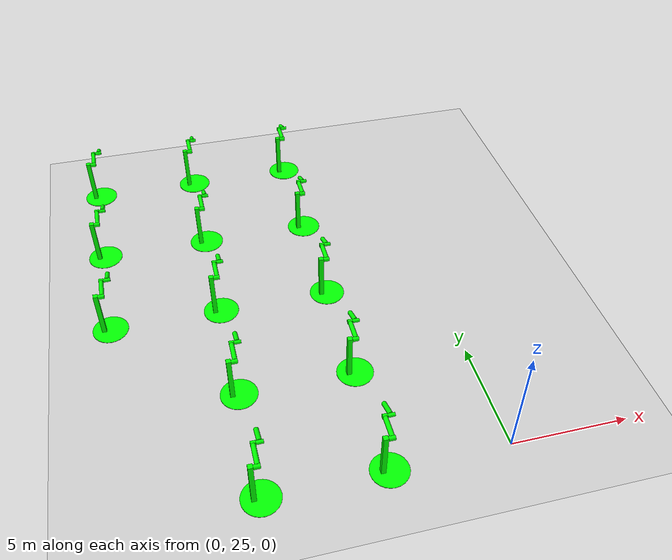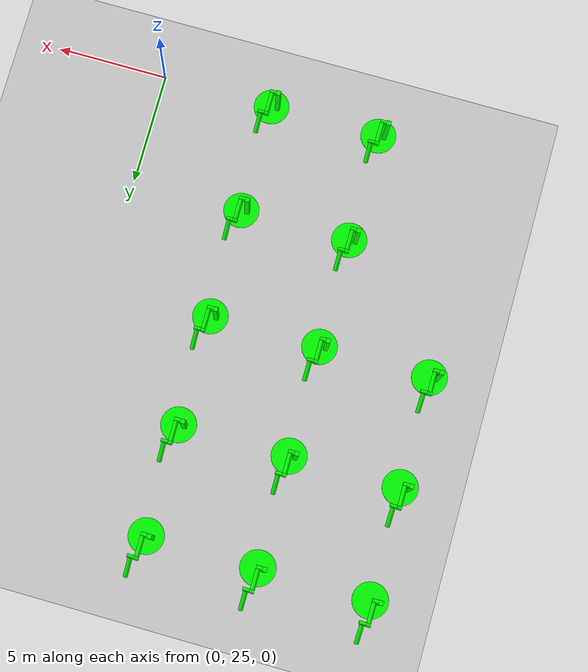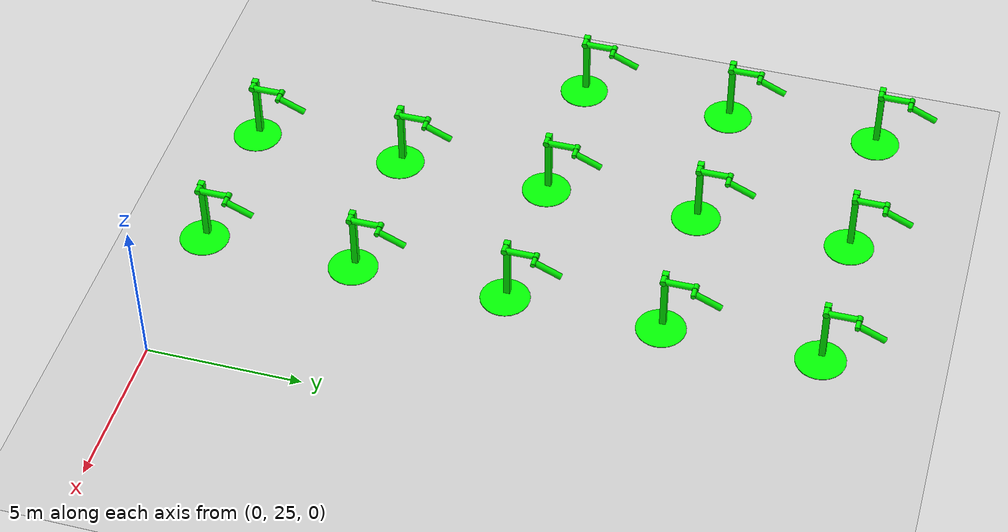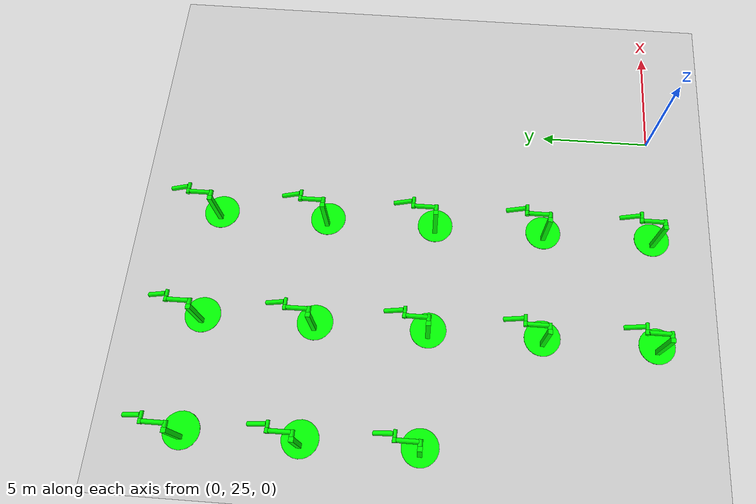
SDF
<sdf version="1.6">
 <world name="double_pendulums">
  <model name="ground_plane">
   <static>true</static>
   <link name="link">
    <collision name="collision">
     <geometry><plane><normal>0 0 1</normal><size>100 100</size></plane></geometry>
    </collision>
    <visual name="visual">
     <geometry><plane><normal>0 0 1</normal><size>100 100</size></plane></geometry>
     <material>
      <ambient>0.8 0.8 0.8 1</ambient>
      <diffuse>0.8 0.8 0.8 1</diffuse>
      <specular>0.8 0.8 0.8 1</specular>
     </material>
    </visual>
   </link>
  </model>
  <model name="dbl_pendulum_53">
   <pose>-10 25 0 0 0 0</pose>
   <link name="base">
    <inertial><mass>100</mass></inertial>
    <visual name="vis_plate_on_ground">
     <pose>0 0 0.01 0 0 0</pose>
     <geometry><cylinder><radius>0.8</radius><length>0.02</length></cylinder></geometry>
     <material><ambient>0 1 0 1</ambient><diffuse>0 1 0 1</diffuse><specular>0 1 0 1</specular></material>
    </visual>
    <visual name="vis_pole">
     <pose>-0.275 0 1.1 0 0 0</pose>
     <geometry><box><size>0.2 0.2 2.2</size></box></geometry>
     <material><ambient>0 1 0 1</ambient><diffuse>0 1 0 1</diffuse><specular>0 1 0 1</specular></material>
    </visual>
    <collision name="col_plate_on_ground">
     <pose>0 0 0.01 0 0 0</pose>
     <geometry><cylinder><radius>0.8</radius><length>0.02</length></cylinder></geometry>
    </collision>
    <collision name="col_pole">
     <pose>-0.275 0 1.1 0 0 0</pose>
     <geometry><box><size>0.2 0.2 2.2</size></box></geometry>
    </collision>
   </link>
   <link name="upper_link">
    <pose>0 0 2.1 -1.5708 0 0</pose>
    <inertial><pose>0 0 0.5 0 0 0</pose></inertial>
    <visual name="vis_upper_joint">
     <pose>-0.05 0 0 0 1.5708 0</pose>
     <geometry><cylinder><radius>0.1</radius><length>0.3</length></cylinder></geometry>
     <material><ambient>0 1 0 1</ambient><diffuse>0 1 0 1</diffuse><specular>0 1 0 1</specular></material>
    </visual>
    <visual name="vis_lower_joint">
     <pose>0 0 1.0 0 1.5708 0</pose>
     <geometry><cylinder><radius>0.1</radius><length>0.2</length></cylinder></geometry>
     <material><ambient>0 1 0 1</ambient><diffuse>0 1 0 1</diffuse><specular>0 1 0 1</specular></material>
    </visual>
    <visual name="vis_cylinder">
     <pose>0 0 0.5 0 0 0</pose>
     <geometry><cylinder><radius>0.1</radius><length>0.9</length></cylinder></geometry>
     <material><ambient>0 1 0 1</ambient><diffuse>0 1 0 1</diffuse><specular>0 1 0 1</specular></material>
    </visual>
    <collision name="col_upper_joint">
     <pose>-0.05 0 0 0 1.5708 0</pose>
     <geometry><cylinder><radius>0.1</radius><length>0.3</length></cylinder></geometry>
    </collision>
    <collision name="col_lower_joint">
     <pose>0 0 1.0 0 1.5708 0</pose>
     <geometry><cylinder><radius>0.1</radius><length>0.2</length></cylinder></geometry>
    </collision>
    <collision name="col_cylinder">
     <pose>0 0 0.5 0 0 0</pose>
     <geometry><cylinder><radius>0.1</radius><length>0.9</length></cylinder></geometry>
    </collision>
   </link>
   <link name="lower_link">
    <pose>0.25 1.0 2.1 -2 0 0</pose>
    <inertial><pose>0 0 0.5 0 0 0</pose></inertial>
    <visual name="vis_lower_joint">
     <pose>0 0 0 0 1.5708 0</pose>
     <geometry><cylinder><radius>0.08</radius><length>0.3</length></cylinder></geometry>
     <material><ambient>0 1 0 1</ambient><diffuse>0 1 0 1</diffuse><specular>0 1 0 1</specular></material>
    </visual>
    <visual name="vis_cylinder">
     <pose>0 0 0.5 0 0 0</pose>
     <geometry><cylinder><radius>0.1</radius><length>0.9</length></cylinder></geometry>
     <material><ambient>0 1 0 1</ambient><diffuse>0 1 0 1</diffuse><specular>0 1 0 1</specular></material>
    </visual>
    <collision name="col_lower_joint">
     <pose>0 0 0 0 1.5708 0</pose>
     <geometry><cylinder><radius>0.08</radius><length>0.3</length></cylinder></geometry>
    </collision>
    <collision name="col_cylinder">
     <pose>0 0 0.5 0 0 0</pose>
     <geometry><cylinder><radius>0.1</radius><length>0.9</length></cylinder></geometry>
    </collision>
   </link>
   <joint name="upper_joint" type="revolute">
    <parent>base</parent>
    <child>upper_link</child>
    <axis><xyz>1.0 0 0</xyz></axis>
   </joint>
   <joint name="lower_joint" type="revolute">
    <parent>upper_link</parent>
    <child>lower_link</child>
    <axis><xyz>1.0 0 0</xyz></axis>
   </joint>
  </model>
  <model name="dbl_pendulum_54">
   <pose>-5 25 0 0 0 0</pose>
   <link name="base">
    <inertial><mass>100</mass></inertial>
    <visual name="vis_plate_on_ground">
     <pose>0 0 0.01 0 0 0</pose>
     <geometry><cylinder><radius>0.8</radius><length>0.02</length></cylinder></geometry>
     <material><ambient>0 1 0 1</ambient><diffuse>0 1 0 1</diffuse><specular>0 1 0 1</specular></material>
    </visual>
    <visual name="vis_pole">
     <pose>-0.275 0 1.1 0 0 0</pose>
     <geometry><box><size>0.2 0.2 2.2</size></box></geometry>
     <material><ambient>0 1 0 1</ambient><diffuse>0 1 0 1</diffuse><specular>0 1 0 1</specular></material>
    </visual>
    <collision name="col_plate_on_ground">
     <pose>0 0 0.01 0 0 0</pose>
     <geometry><cylinder><radius>0.8</radius><length>0.02</length></cylinder></geometry>
    </collision>
    <collision name="col_pole">
     <pose>-0.275 0 1.1 0 0 0</pose>
     <geometry><box><size>0.2 0.2 2.2</size></box></geometry>
    </collision>
   </link>
   <link name="upper_link">
    <pose>0 0 2.1 -1.5708 0 0</pose>
    <inertial><pose>0 0 0.5 0 0 0</pose></inertial>
    <visual name="vis_upper_joint">
     <pose>-0.05 0 0 0 1.5708 0</pose>
     <geometry><cylinder><radius>0.1</radius><length>0.3</length></cylinder></geometry>
     <material><ambient>0 1 0 1</ambient><diffuse>0 1 0 1</diffuse><specular>0 1 0 1</specular></material>
    </visual>
    <visual name="vis_lower_joint">
     <pose>0 0 1.0 0 1.5708 0</pose>
     <geometry><cylinder><radius>0.1</radius><length>0.2</length></cylinder></geometry>
     <material><ambient>0 1 0 1</ambient><diffuse>0 1 0 1</diffuse><specular>0 1 0 1</specular></material>
    </visual>
    <visual name="vis_cylinder">
     <pose>0 0 0.5 0 0 0</pose>
     <geometry><cylinder><radius>0.1</radius><length>0.9</length></cylinder></geometry>
     <material><ambient>0 1 0 1</ambient><diffuse>0 1 0 1</diffuse><specular>0 1 0 1</specular></material>
    </visual>
    <collision name="col_upper_joint">
     <pose>-0.05 0 0 0 1.5708 0</pose>
     <geometry><cylinder><radius>0.1</radius><length>0.3</length></cylinder></geometry>
    </collision>
    <collision name="col_lower_joint">
     <pose>0 0 1.0 0 1.5708 0</pose>
     <geometry><cylinder><radius>0.1</radius><length>0.2</length></cylinder></geometry>
    </collision>
    <collision name="col_cylinder">
     <pose>0 0 0.5 0 0 0</pose>
     <geometry><cylinder><radius>0.1</radius><length>0.9</length></cylinder></geometry>
    </collision>
   </link>
   <link name="lower_link">
    <pose>0.25 1.0 2.1 -2 0 0</pose>
    <inertial><pose>0 0 0.5 0 0 0</pose></inertial>
    <visual name="vis_lower_joint">
     <pose>0 0 0 0 1.5708 0</pose>
     <geometry><cylinder><radius>0.08</radius><length>0.3</length></cylinder></geometry>
     <material><ambient>0 1 0 1</ambient><diffuse>0 1 0 1</diffuse><specular>0 1 0 1</specular></material>
    </visual>
    <visual name="vis_cylinder">
     <pose>0 0 0.5 0 0 0</pose>
     <geometry><cylinder><radius>0.1</radius><length>0.9</length></cylinder></geometry>
     <material><ambient>0 1 0 1</ambient><diffuse>0 1 0 1</diffuse><specular>0 1 0 1</specular></material>
    </visual>
    <collision name="col_lower_joint">
     <pose>0 0 0 0 1.5708 0</pose>
     <geometry><cylinder><radius>0.08</radius><length>0.3</length></cylinder></geometry>
    </collision>
    <collision name="col_cylinder">
     <pose>0 0 0.5 0 0 0</pose>
     <geometry><cylinder><radius>0.1</radius><length>0.9</length></cylinder></geometry>
    </collision>
   </link>
   <joint name="upper_joint" type="revolute">
    <parent>base</parent>
    <child>upper_link</child>
    <axis><xyz>1.0 0 0</xyz></axis>
   </joint>
   <joint name="lower_joint" type="revolute">
    <parent>upper_link</parent>
    <child>lower_link</child>
    <axis><xyz>1.0 0 0</xyz></axis>
   </joint>
  </model>
  <model name="dbl_pendulum_63">
   <pose>-10 30 0 0 0 0</pose>
   <link name="base">
    <inertial><mass>100</mass></inertial>
    <visual name="vis_plate_on_ground">
     <pose>0 0 0.01 0 0 0</pose>
     <geometry><cylinder><radius>0.8</radius><length>0.02</length></cylinder></geometry>
     <material><ambient>0 1 0 1</ambient><diffuse>0 1 0 1</diffuse><specular>0 1 0 1</specular></material>
    </visual>
    <visual name="vis_pole">
     <pose>-0.275 0 1.1 0 0 0</pose>
     <geometry><box><size>0.2 0.2 2.2</size></box></geometry>
     <material><ambient>0 1 0 1</ambient><diffuse>0 1 0 1</diffuse><specular>0 1 0 1</specular></material>
    </visual>
    <collision name="col_plate_on_ground">
     <pose>0 0 0.01 0 0 0</pose>
     <geometry><cylinder><radius>0.8</radius><length>0.02</length></cylinder></geometry>
    </collision>
    <collision name="col_pole">
     <pose>-0.275 0 1.1 0 0 0</pose>
     <geometry><box><size>0.2 0.2 2.2</size></box></geometry>
    </collision>
   </link>
   <link name="upper_link">
    <pose>0 0 2.1 -1.5708 0 0</pose>
    <inertial><pose>0 0 0.5 0 0 0</pose></inertial>
    <visual name="vis_upper_joint">
     <pose>-0.05 0 0 0 1.5708 0</pose>
     <geometry><cylinder><radius>0.1</radius><length>0.3</length></cylinder></geometry>
     <material><ambient>0 1 0 1</ambient><diffuse>0 1 0 1</diffuse><specular>0 1 0 1</specular></material>
    </visual>
    <visual name="vis_lower_joint">
     <pose>0 0 1.0 0 1.5708 0</pose>
     <geometry><cylinder><radius>0.1</radius><length>0.2</length></cylinder></geometry>
     <material><ambient>0 1 0 1</ambient><diffuse>0 1 0 1</diffuse><specular>0 1 0 1</specular></material>
    </visual>
    <visual name="vis_cylinder">
     <pose>0 0 0.5 0 0 0</pose>
     <geometry><cylinder><radius>0.1</radius><length>0.9</length></cylinder></geometry>
     <material><ambient>0 1 0 1</ambient><diffuse>0 1 0 1</diffuse><specular>0 1 0 1</specular></material>
    </visual>
    <collision name="col_upper_joint">
     <pose>-0.05 0 0 0 1.5708 0</pose>
     <geometry><cylinder><radius>0.1</radius><length>0.3</length></cylinder></geometry>
    </collision>
    <collision name="col_lower_joint">
     <pose>0 0 1.0 0 1.5708 0</pose>
     <geometry><cylinder><radius>0.1</radius><length>0.2</length></cylinder></geometry>
    </collision>
    <collision name="col_cylinder">
     <pose>0 0 0.5 0 0 0</pose>
     <geometry><cylinder><radius>0.1</radius><length>0.9</length></cylinder></geometry>
    </collision>
   </link>
   <link name="lower_link">
    <pose>0.25 1.0 2.1 -2 0 0</pose>
    <inertial><pose>0 0 0.5 0 0 0</pose></inertial>
    <visual name="vis_lower_joint">
     <pose>0 0 0 0 1.5708 0</pose>
     <geometry><cylinder><radius>0.08</radius><length>0.3</length></cylinder></geometry>
     <material><ambient>0 1 0 1</ambient><diffuse>0 1 0 1</diffuse><specular>0 1 0 1</specular></material>
    </visual>
    <visual name="vis_cylinder">
     <pose>0 0 0.5 0 0 0</pose>
     <geometry><cylinder><radius>0.1</radius><length>0.9</length></cylinder></geometry>
     <material><ambient>0 1 0 1</ambient><diffuse>0 1 0 1</diffuse><specular>0 1 0 1</specular></material>
    </visual>
    <collision name="col_lower_joint">
     <pose>0 0 0 0 1.5708 0</pose>
     <geometry><cylinder><radius>0.08</radius><length>0.3</length></cylinder></geometry>
    </collision>
    <collision name="col_cylinder">
     <pose>0 0 0.5 0 0 0</pose>
     <geometry><cylinder><radius>0.1</radius><length>0.9</length></cylinder></geometry>
    </collision>
   </link>
   <joint name="upper_joint" type="revolute">
    <parent>base</parent>
    <child>upper_link</child>
    <axis><xyz>1.0 0 0</xyz></axis>
   </joint>
   <joint name="lower_joint" type="revolute">
    <parent>upper_link</parent>
    <child>lower_link</child>
    <axis><xyz>1.0 0 0</xyz></axis>
   </joint>
  </model>
  <model name="dbl_pendulum_64">
   <pose>-5 30 0 0 0 0</pose>
   <link name="base">
    <inertial><mass>100</mass></inertial>
    <visual name="vis_plate_on_ground">
     <pose>0 0 0.01 0 0 0</pose>
     <geometry><cylinder><radius>0.8</radius><length>0.02</length></cylinder></geometry>
     <material><ambient>0 1 0 1</ambient><diffuse>0 1 0 1</diffuse><specular>0 1 0 1</specular></material>
    </visual>
    <visual name="vis_pole">
     <pose>-0.275 0 1.1 0 0 0</pose>
     <geometry><box><size>0.2 0.2 2.2</size></box></geometry>
     <material><ambient>0 1 0 1</ambient><diffuse>0 1 0 1</diffuse><specular>0 1 0 1</specular></material>
    </visual>
    <collision name="col_plate_on_ground">
     <pose>0 0 0.01 0 0 0</pose>
     <geometry><cylinder><radius>0.8</radius><length>0.02</length></cylinder></geometry>
    </collision>
    <collision name="col_pole">
     <pose>-0.275 0 1.1 0 0 0</pose>
     <geometry><box><size>0.2 0.2 2.2</size></box></geometry>
    </collision>
   </link>
   <link name="upper_link">
    <pose>0 0 2.1 -1.5708 0 0</pose>
    <inertial><pose>0 0 0.5 0 0 0</pose></inertial>
    <visual name="vis_upper_joint">
     <pose>-0.05 0 0 0 1.5708 0</pose>
     <geometry><cylinder><radius>0.1</radius><length>0.3</length></cylinder></geometry>
     <material><ambient>0 1 0 1</ambient><diffuse>0 1 0 1</diffuse><specular>0 1 0 1</specular></material>
    </visual>
    <visual name="vis_lower_joint">
     <pose>0 0 1.0 0 1.5708 0</pose>
     <geometry><cylinder><radius>0.1</radius><length>0.2</length></cylinder></geometry>
     <material><ambient>0 1 0 1</ambient><diffuse>0 1 0 1</diffuse><specular>0 1 0 1</specular></material>
    </visual>
    <visual name="vis_cylinder">
     <pose>0 0 0.5 0 0 0</pose>
     <geometry><cylinder><radius>0.1</radius><length>0.9</length></cylinder></geometry>
     <material><ambient>0 1 0 1</ambient><diffuse>0 1 0 1</diffuse><specular>0 1 0 1</specular></material>
    </visual>
    <collision name="col_upper_joint">
     <pose>-0.05 0 0 0 1.5708 0</pose>
     <geometry><cylinder><radius>0.1</radius><length>0.3</length></cylinder></geometry>
    </collision>
    <collision name="col_lower_joint">
     <pose>0 0 1.0 0 1.5708 0</pose>
     <geometry><cylinder><radius>0.1</radius><length>0.2</length></cylinder></geometry>
    </collision>
    <collision name="col_cylinder">
     <pose>0 0 0.5 0 0 0</pose>
     <geometry><cylinder><radius>0.1</radius><length>0.9</length></cylinder></geometry>
    </collision>
   </link>
   <link name="lower_link">
    <pose>0.25 1.0 2.1 -2 0 0</pose>
    <inertial><pose>0 0 0.5 0 0 0</pose></inertial>
    <visual name="vis_lower_joint">
     <pose>0 0 0 0 1.5708 0</pose>
     <geometry><cylinder><radius>0.08</radius><length>0.3</length></cylinder></geometry>
     <material><ambient>0 1 0 1</ambient><diffuse>0 1 0 1</diffuse><specular>0 1 0 1</specular></material>
    </visual>
    <visual name="vis_cylinder">
     <pose>0 0 0.5 0 0 0</pose>
     <geometry><cylinder><radius>0.1</radius><length>0.9</length></cylinder></geometry>
     <material><ambient>0 1 0 1</ambient><diffuse>0 1 0 1</diffuse><specular>0 1 0 1</specular></material>
    </visual>
    <collision name="col_lower_joint">
     <pose>0 0 0 0 1.5708 0</pose>
     <geometry><cylinder><radius>0.08</radius><length>0.3</length></cylinder></geometry>
    </collision>
    <collision name="col_cylinder">
     <pose>0 0 0.5 0 0 0</pose>
     <geometry><cylinder><radius>0.1</radius><length>0.9</length></cylinder></geometry>
    </collision>
   </link>
   <joint name="upper_joint" type="revolute">
    <parent>base</parent>
    <child>upper_link</child>
    <axis><xyz>1.0 0 0</xyz></axis>
   </joint>
   <joint name="lower_joint" type="revolute">
    <parent>upper_link</parent>
    <child>lower_link</child>
    <axis><xyz>1.0 0 0</xyz></axis>
   </joint>
  </model>
  <model name="dbl_pendulum_72">
   <pose>-15 35 0 0 0 0</pose>
   <link name="base">
    <inertial><mass>100</mass></inertial>
    <visual name="vis_plate_on_ground">
     <pose>0 0 0.01 0 0 0</pose>
     <geometry><cylinder><radius>0.8</radius><length>0.02</length></cylinder></geometry>
     <material><ambient>0 1 0 1</ambient><diffuse>0 1 0 1</diffuse><specular>0 1 0 1</specular></material>
    </visual>
    <visual name="vis_pole">
     <pose>-0.275 0 1.1 0 0 0</pose>
     <geometry><box><size>0.2 0.2 2.2</size></box></geometry>
     <material><ambient>0 1 0 1</ambient><diffuse>0 1 0 1</diffuse><specular>0 1 0 1</specular></material>
    </visual>
    <collision name="col_plate_on_ground">
     <pose>0 0 0.01 0 0 0</pose>
     <geometry><cylinder><radius>0.8</radius><length>0.02</length></cylinder></geometry>
    </collision>
    <collision name="col_pole">
     <pose>-0.275 0 1.1 0 0 0</pose>
     <geometry><box><size>0.2 0.2 2.2</size></box></geometry>
    </collision>
   </link>
   <link name="upper_link">
    <pose>0 0 2.1 -1.5708 0 0</pose>
    <inertial><pose>0 0 0.5 0 0 0</pose></inertial>
    <visual name="vis_upper_joint">
     <pose>-0.05 0 0 0 1.5708 0</pose>
     <geometry><cylinder><radius>0.1</radius><length>0.3</length></cylinder></geometry>
     <material><ambient>0 1 0 1</ambient><diffuse>0 1 0 1</diffuse><specular>0 1 0 1</specular></material>
    </visual>
    <visual name="vis_lower_joint">
     <pose>0 0 1.0 0 1.5708 0</pose>
     <geometry><cylinder><radius>0.1</radius><length>0.2</length></cylinder></geometry>
     <material><ambient>0 1 0 1</ambient><diffuse>0 1 0 1</diffuse><specular>0 1 0 1</specular></material>
    </visual>
    <visual name="vis_cylinder">
     <pose>0 0 0.5 0 0 0</pose>
     <geometry><cylinder><radius>0.1</radius><length>0.9</length></cylinder></geometry>
     <material><ambient>0 1 0 1</ambient><diffuse>0 1 0 1</diffuse><specular>0 1 0 1</specular></material>
    </visual>
    <collision name="col_upper_joint">
     <pose>-0.05 0 0 0 1.5708 0</pose>
     <geometry><cylinder><radius>0.1</radius><length>0.3</length></cylinder></geometry>
    </collision>
    <collision name="col_lower_joint">
     <pose>0 0 1.0 0 1.5708 0</pose>
     <geometry><cylinder><radius>0.1</radius><length>0.2</length></cylinder></geometry>
    </collision>
    <collision name="col_cylinder">
     <pose>0 0 0.5 0 0 0</pose>
     <geometry><cylinder><radius>0.1</radius><length>0.9</length></cylinder></geometry>
    </collision>
   </link>
   <link name="lower_link">
    <pose>0.25 1.0 2.1 -2 0 0</pose>
    <inertial><pose>0 0 0.5 0 0 0</pose></inertial>
    <visual name="vis_lower_joint">
     <pose>0 0 0 0 1.5708 0</pose>
     <geometry><cylinder><radius>0.08</radius><length>0.3</length></cylinder></geometry>
     <material><ambient>0 1 0 1</ambient><diffuse>0 1 0 1</diffuse><specular>0 1 0 1</specular></material>
    </visual>
    <visual name="vis_cylinder">
     <pose>0 0 0.5 0 0 0</pose>
     <geometry><cylinder><radius>0.1</radius><length>0.9</length></cylinder></geometry>
     <material><ambient>0 1 0 1</ambient><diffuse>0 1 0 1</diffuse><specular>0 1 0 1</specular></material>
    </visual>
    <collision name="col_lower_joint">
     <pose>0 0 0 0 1.5708 0</pose>
     <geometry><cylinder><radius>0.08</radius><length>0.3</length></cylinder></geometry>
    </collision>
    <collision name="col_cylinder">
     <pose>0 0 0.5 0 0 0</pose>
     <geometry><cylinder><radius>0.1</radius><length>0.9</length></cylinder></geometry>
    </collision>
   </link>
   <joint name="upper_joint" type="revolute">
    <parent>base</parent>
    <child>upper_link</child>
    <axis><xyz>1.0 0 0</xyz></axis>
   </joint>
   <joint name="lower_joint" type="revolute">
    <parent>upper_link</parent>
    <child>lower_link</child>
    <axis><xyz>1.0 0 0</xyz></axis>
   </joint>
  </model>
  <model name="dbl_pendulum_73">
   <pose>-10 35 0 0 0 0</pose>
   <link name="base">
    <inertial><mass>100</mass></inertial>
    <visual name="vis_plate_on_ground">
     <pose>0 0 0.01 0 0 0</pose>
     <geometry><cylinder><radius>0.8</radius><length>0.02</length></cylinder></geometry>
     <material><ambient>0 1 0 1</ambient><diffuse>0 1 0 1</diffuse><specular>0 1 0 1</specular></material>
    </visual>
    <visual name="vis_pole">
     <pose>-0.275 0 1.1 0 0 0</pose>
     <geometry><box><size>0.2 0.2 2.2</size></box></geometry>
     <material><ambient>0 1 0 1</ambient><diffuse>0 1 0 1</diffuse><specular>0 1 0 1</specular></material>
    </visual>
    <collision name="col_plate_on_ground">
     <pose>0 0 0.01 0 0 0</pose>
     <geometry><cylinder><radius>0.8</radius><length>0.02</length></cylinder></geometry>
    </collision>
    <collision name="col_pole">
     <pose>-0.275 0 1.1 0 0 0</pose>
     <geometry><box><size>0.2 0.2 2.2</size></box></geometry>
    </collision>
   </link>
   <link name="upper_link">
    <pose>0 0 2.1 -1.5708 0 0</pose>
    <inertial><pose>0 0 0.5 0 0 0</pose></inertial>
    <visual name="vis_upper_joint">
     <pose>-0.05 0 0 0 1.5708 0</pose>
     <geometry><cylinder><radius>0.1</radius><length>0.3</length></cylinder></geometry>
     <material><ambient>0 1 0 1</ambient><diffuse>0 1 0 1</diffuse><specular>0 1 0 1</specular></material>
    </visual>
    <visual name="vis_lower_joint">
     <pose>0 0 1.0 0 1.5708 0</pose>
     <geometry><cylinder><radius>0.1</radius><length>0.2</length></cylinder></geometry>
     <material><ambient>0 1 0 1</ambient><diffuse>0 1 0 1</diffuse><specular>0 1 0 1</specular></material>
    </visual>
    <visual name="vis_cylinder">
     <pose>0 0 0.5 0 0 0</pose>
     <geometry><cylinder><radius>0.1</radius><length>0.9</length></cylinder></geometry>
     <material><ambient>0 1 0 1</ambient><diffuse>0 1 0 1</diffuse><specular>0 1 0 1</specular></material>
    </visual>
    <collision name="col_upper_joint">
     <pose>-0.05 0 0 0 1.5708 0</pose>
     <geometry><cylinder><radius>0.1</radius><length>0.3</length></cylinder></geometry>
    </collision>
    <collision name="col_lower_joint">
     <pose>0 0 1.0 0 1.5708 0</pose>
     <geometry><cylinder><radius>0.1</radius><length>0.2</length></cylinder></geometry>
    </collision>
    <collision name="col_cylinder">
     <pose>0 0 0.5 0 0 0</pose>
     <geometry><cylinder><radius>0.1</radius><length>0.9</length></cylinder></geometry>
    </collision>
   </link>
   <link name="lower_link">
    <pose>0.25 1.0 2.1 -2 0 0</pose>
    <inertial><pose>0 0 0.5 0 0 0</pose></inertial>
    <visual name="vis_lower_joint">
     <pose>0 0 0 0 1.5708 0</pose>
     <geometry><cylinder><radius>0.08</radius><length>0.3</length></cylinder></geometry>
     <material><ambient>0 1 0 1</ambient><diffuse>0 1 0 1</diffuse><specular>0 1 0 1</specular></material>
    </visual>
    <visual name="vis_cylinder">
     <pose>0 0 0.5 0 0 0</pose>
     <geometry><cylinder><radius>0.1</radius><length>0.9</length></cylinder></geometry>
     <material><ambient>0 1 0 1</ambient><diffuse>0 1 0 1</diffuse><specular>0 1 0 1</specular></material>
    </visual>
    <collision name="col_lower_joint">
     <pose>0 0 0 0 1.5708 0</pose>
     <geometry><cylinder><radius>0.08</radius><length>0.3</length></cylinder></geometry>
    </collision>
    <collision name="col_cylinder">
     <pose>0 0 0.5 0 0 0</pose>
     <geometry><cylinder><radius>0.1</radius><length>0.9</length></cylinder></geometry>
    </collision>
   </link>
   <joint name="upper_joint" type="revolute">
    <parent>base</parent>
    <child>upper_link</child>
    <axis><xyz>1.0 0 0</xyz></axis>
   </joint>
   <joint name="lower_joint" type="revolute">
    <parent>upper_link</parent>
    <child>lower_link</child>
    <axis><xyz>1.0 0 0</xyz></axis>
   </joint>
  </model>
  <model name="dbl_pendulum_74">
   <pose>-5 35 0 0 0 0</pose>
   <link name="base">
    <inertial><mass>100</mass></inertial>
    <visual name="vis_plate_on_ground">
     <pose>0 0 0.01 0 0 0</pose>
     <geometry><cylinder><radius>0.8</radius><length>0.02</length></cylinder></geometry>
     <material><ambient>0 1 0 1</ambient><diffuse>0 1 0 1</diffuse><specular>0 1 0 1</specular></material>
    </visual>
    <visual name="vis_pole">
     <pose>-0.275 0 1.1 0 0 0</pose>
     <geometry><box><size>0.2 0.2 2.2</size></box></geometry>
     <material><ambient>0 1 0 1</ambient><diffuse>0 1 0 1</diffuse><specular>0 1 0 1</specular></material>
    </visual>
    <collision name="col_plate_on_ground">
     <pose>0 0 0.01 0 0 0</pose>
     <geometry><cylinder><radius>0.8</radius><length>0.02</length></cylinder></geometry>
    </collision>
    <collision name="col_pole">
     <pose>-0.275 0 1.1 0 0 0</pose>
     <geometry><box><size>0.2 0.2 2.2</size></box></geometry>
    </collision>
   </link>
   <link name="upper_link">
    <pose>0 0 2.1 -1.5708 0 0</pose>
    <inertial><pose>0 0 0.5 0 0 0</pose></inertial>
    <visual name="vis_upper_joint">
     <pose>-0.05 0 0 0 1.5708 0</pose>
     <geometry><cylinder><radius>0.1</radius><length>0.3</length></cylinder></geometry>
     <material><ambient>0 1 0 1</ambient><diffuse>0 1 0 1</diffuse><specular>0 1 0 1</specular></material>
    </visual>
    <visual name="vis_lower_joint">
     <pose>0 0 1.0 0 1.5708 0</pose>
     <geometry><cylinder><radius>0.1</radius><length>0.2</length></cylinder></geometry>
     <material><ambient>0 1 0 1</ambient><diffuse>0 1 0 1</diffuse><specular>0 1 0 1</specular></material>
    </visual>
    <visual name="vis_cylinder">
     <pose>0 0 0.5 0 0 0</pose>
     <geometry><cylinder><radius>0.1</radius><length>0.9</length></cylinder></geometry>
     <material><ambient>0 1 0 1</ambient><diffuse>0 1 0 1</diffuse><specular>0 1 0 1</specular></material>
    </visual>
    <collision name="col_upper_joint">
     <pose>-0.05 0 0 0 1.5708 0</pose>
     <geometry><cylinder><radius>0.1</radius><length>0.3</length></cylinder></geometry>
    </collision>
    <collision name="col_lower_joint">
     <pose>0 0 1.0 0 1.5708 0</pose>
     <geometry><cylinder><radius>0.1</radius><length>0.2</length></cylinder></geometry>
    </collision>
    <collision name="col_cylinder">
     <pose>0 0 0.5 0 0 0</pose>
     <geometry><cylinder><radius>0.1</radius><length>0.9</length></cylinder></geometry>
    </collision>
   </link>
   <link name="lower_link">
    <pose>0.25 1.0 2.1 -2 0 0</pose>
    <inertial><pose>0 0 0.5 0 0 0</pose></inertial>
    <visual name="vis_lower_joint">
     <pose>0 0 0 0 1.5708 0</pose>
     <geometry><cylinder><radius>0.08</radius><length>0.3</length></cylinder></geometry>
     <material><ambient>0 1 0 1</ambient><diffuse>0 1 0 1</diffuse><specular>0 1 0 1</specular></material>
    </visual>
    <visual name="vis_cylinder">
     <pose>0 0 0.5 0 0 0</pose>
     <geometry><cylinder><radius>0.1</radius><length>0.9</length></cylinder></geometry>
     <material><ambient>0 1 0 1</ambient><diffuse>0 1 0 1</diffuse><specular>0 1 0 1</specular></material>
    </visual>
    <collision name="col_lower_joint">
     <pose>0 0 0 0 1.5708 0</pose>
     <geometry><cylinder><radius>0.08</radius><length>0.3</length></cylinder></geometry>
    </collision>
    <collision name="col_cylinder">
     <pose>0 0 0.5 0 0 0</pose>
     <geometry><cylinder><radius>0.1</radius><length>0.9</length></cylinder></geometry>
    </collision>
   </link>
   <joint name="upper_joint" type="revolute">
    <parent>base</parent>
    <child>upper_link</child>
    <axis><xyz>1.0 0 0</xyz></axis>
   </joint>
   <joint name="lower_joint" type="revolute">
    <parent>upper_link</parent>
    <child>lower_link</child>
    <axis><xyz>1.0 0 0</xyz></axis>
   </joint>
  </model>
  <model name="dbl_pendulum_82">
   <pose>-15 40 0 0 0 0</pose>
   <link name="base">
    <inertial><mass>100</mass></inertial>
    <visual name="vis_plate_on_ground">
     <pose>0 0 0.01 0 0 0</pose>
     <geometry><cylinder><radius>0.8</radius><length>0.02</length></cylinder></geometry>
     <material><ambient>0 1 0 1</ambient><diffuse>0 1 0 1</diffuse><specular>0 1 0 1</specular></material>
    </visual>
    <visual name="vis_pole">
     <pose>-0.275 0 1.1 0 0 0</pose>
     <geometry><box><size>0.2 0.2 2.2</size></box></geometry>
     <material><ambient>0 1 0 1</ambient><diffuse>0 1 0 1</diffuse><specular>0 1 0 1</specular></material>
    </visual>
    <collision name="col_plate_on_ground">
     <pose>0 0 0.01 0 0 0</pose>
     <geometry><cylinder><radius>0.8</radius><length>0.02</length></cylinder></geometry>
    </collision>
    <collision name="col_pole">
     <pose>-0.275 0 1.1 0 0 0</pose>
     <geometry><box><size>0.2 0.2 2.2</size></box></geometry>
    </collision>
   </link>
   <link name="upper_link">
    <pose>0 0 2.1 -1.5708 0 0</pose>
    <inertial><pose>0 0 0.5 0 0 0</pose></inertial>
    <visual name="vis_upper_joint">
     <pose>-0.05 0 0 0 1.5708 0</pose>
     <geometry><cylinder><radius>0.1</radius><length>0.3</length></cylinder></geometry>
     <material><ambient>0 1 0 1</ambient><diffuse>0 1 0 1</diffuse><specular>0 1 0 1</specular></material>
    </visual>
    <visual name="vis_lower_joint">
     <pose>0 0 1.0 0 1.5708 0</pose>
     <geometry><cylinder><radius>0.1</radius><length>0.2</length></cylinder></geometry>
     <material><ambient>0 1 0 1</ambient><diffuse>0 1 0 1</diffuse><specular>0 1 0 1</specular></material>
    </visual>
    <visual name="vis_cylinder">
     <pose>0 0 0.5 0 0 0</pose>
     <geometry><cylinder><radius>0.1</radius><length>0.9</length></cylinder></geometry>
     <material><ambient>0 1 0 1</ambient><diffuse>0 1 0 1</diffuse><specular>0 1 0 1</specular></material>
    </visual>
    <collision name="col_upper_joint">
     <pose>-0.05 0 0 0 1.5708 0</pose>
     <geometry><cylinder><radius>0.1</radius><length>0.3</length></cylinder></geometry>
    </collision>
    <collision name="col_lower_joint">
     <pose>0 0 1.0 0 1.5708 0</pose>
     <geometry><cylinder><radius>0.1</radius><length>0.2</length></cylinder></geometry>
    </collision>
    <collision name="col_cylinder">
     <pose>0 0 0.5 0 0 0</pose>
     <geometry><cylinder><radius>0.1</radius><length>0.9</length></cylinder></geometry>
    </collision>
   </link>
   <link name="lower_link">
    <pose>0.25 1.0 2.1 -2 0 0</pose>
    <inertial><pose>0 0 0.5 0 0 0</pose></inertial>
    <visual name="vis_lower_joint">
     <pose>0 0 0 0 1.5708 0</pose>
     <geometry><cylinder><radius>0.08</radius><length>0.3</length></cylinder></geometry>
     <material><ambient>0 1 0 1</ambient><diffuse>0 1 0 1</diffuse><specular>0 1 0 1</specular></material>
    </visual>
    <visual name="vis_cylinder">
     <pose>0 0 0.5 0 0 0</pose>
     <geometry><cylinder><radius>0.1</radius><length>0.9</length></cylinder></geometry>
     <material><ambient>0 1 0 1</ambient><diffuse>0 1 0 1</diffuse><specular>0 1 0 1</specular></material>
    </visual>
    <collision name="col_lower_joint">
     <pose>0 0 0 0 1.5708 0</pose>
     <geometry><cylinder><radius>0.08</radius><length>0.3</length></cylinder></geometry>
    </collision>
    <collision name="col_cylinder">
     <pose>0 0 0.5 0 0 0</pose>
     <geometry><cylinder><radius>0.1</radius><length>0.9</length></cylinder></geometry>
    </collision>
   </link>
   <joint name="upper_joint" type="revolute">
    <parent>base</parent>
    <child>upper_link</child>
    <axis><xyz>1.0 0 0</xyz></axis>
   </joint>
   <joint name="lower_joint" type="revolute">
    <parent>upper_link</parent>
    <child>lower_link</child>
    <axis><xyz>1.0 0 0</xyz></axis>
   </joint>
  </model>
  <model name="dbl_pendulum_83">
   <pose>-10 40 0 0 0 0</pose>
   <link name="base">
    <inertial><mass>100</mass></inertial>
    <visual name="vis_plate_on_ground">
     <pose>0 0 0.01 0 0 0</pose>
     <geometry><cylinder><radius>0.8</radius><length>0.02</length></cylinder></geometry>
     <material><ambient>0 1 0 1</ambient><diffuse>0 1 0 1</diffuse><specular>0 1 0 1</specular></material>
    </visual>
    <visual name="vis_pole">
     <pose>-0.275 0 1.1 0 0 0</pose>
     <geometry><box><size>0.2 0.2 2.2</size></box></geometry>
     <material><ambient>0 1 0 1</ambient><diffuse>0 1 0 1</diffuse><specular>0 1 0 1</specular></material>
    </visual>
    <collision name="col_plate_on_ground">
     <pose>0 0 0.01 0 0 0</pose>
     <geometry><cylinder><radius>0.8</radius><length>0.02</length></cylinder></geometry>
    </collision>
    <collision name="col_pole">
     <pose>-0.275 0 1.1 0 0 0</pose>
     <geometry><box><size>0.2 0.2 2.2</size></box></geometry>
    </collision>
   </link>
   <link name="upper_link">
    <pose>0 0 2.1 -1.5708 0 0</pose>
    <inertial><pose>0 0 0.5 0 0 0</pose></inertial>
    <visual name="vis_upper_joint">
     <pose>-0.05 0 0 0 1.5708 0</pose>
     <geometry><cylinder><radius>0.1</radius><length>0.3</length></cylinder></geometry>
     <material><ambient>0 1 0 1</ambient><diffuse>0 1 0 1</diffuse><specular>0 1 0 1</specular></material>
    </visual>
    <visual name="vis_lower_joint">
     <pose>0 0 1.0 0 1.5708 0</pose>
     <geometry><cylinder><radius>0.1</radius><length>0.2</length></cylinder></geometry>
     <material><ambient>0 1 0 1</ambient><diffuse>0 1 0 1</diffuse><specular>0 1 0 1</specular></material>
    </visual>
    <visual name="vis_cylinder">
     <pose>0 0 0.5 0 0 0</pose>
     <geometry><cylinder><radius>0.1</radius><length>0.9</length></cylinder></geometry>
     <material><ambient>0 1 0 1</ambient><diffuse>0 1 0 1</diffuse><specular>0 1 0 1</specular></material>
    </visual>
    <collision name="col_upper_joint">
     <pose>-0.05 0 0 0 1.5708 0</pose>
     <geometry><cylinder><radius>0.1</radius><length>0.3</length></cylinder></geometry>
    </collision>
    <collision name="col_lower_joint">
     <pose>0 0 1.0 0 1.5708 0</pose>
     <geometry><cylinder><radius>0.1</radius><length>0.2</length></cylinder></geometry>
    </collision>
    <collision name="col_cylinder">
     <pose>0 0 0.5 0 0 0</pose>
     <geometry><cylinder><radius>0.1</radius><length>0.9</length></cylinder></geometry>
    </collision>
   </link>
   <link name="lower_link">
    <pose>0.25 1.0 2.1 -2 0 0</pose>
    <inertial><pose>0 0 0.5 0 0 0</pose></inertial>
    <visual name="vis_lower_joint">
     <pose>0 0 0 0 1.5708 0</pose>
     <geometry><cylinder><radius>0.08</radius><length>0.3</length></cylinder></geometry>
     <material><ambient>0 1 0 1</ambient><diffuse>0 1 0 1</diffuse><specular>0 1 0 1</specular></material>
    </visual>
    <visual name="vis_cylinder">
     <pose>0 0 0.5 0 0 0</pose>
     <geometry><cylinder><radius>0.1</radius><length>0.9</length></cylinder></geometry>
     <material><ambient>0 1 0 1</ambient><diffuse>0 1 0 1</diffuse><specular>0 1 0 1</specular></material>
    </visual>
    <collision name="col_lower_joint">
     <pose>0 0 0 0 1.5708 0</pose>
     <geometry><cylinder><radius>0.08</radius><length>0.3</length></cylinder></geometry>
    </collision>
    <collision name="col_cylinder">
     <pose>0 0 0.5 0 0 0</pose>
     <geometry><cylinder><radius>0.1</radius><length>0.9</length></cylinder></geometry>
    </collision>
   </link>
   <joint name="upper_joint" type="revolute">
    <parent>base</parent>
    <child>upper_link</child>
    <axis><xyz>1.0 0 0</xyz></axis>
   </joint>
   <joint name="lower_joint" type="revolute">
    <parent>upper_link</parent>
    <child>lower_link</child>
    <axis><xyz>1.0 0 0</xyz></axis>
   </joint>
  </model>
  <model name="dbl_pendulum_84">
   <pose>-5 40 0 0 0 0</pose>
   <link name="base">
    <inertial><mass>100</mass></inertial>
    <visual name="vis_plate_on_ground">
     <pose>0 0 0.01 0 0 0</pose>
     <geometry><cylinder><radius>0.8</radius><length>0.02</length></cylinder></geometry>
     <material><ambient>0 1 0 1</ambient><diffuse>0 1 0 1</diffuse><specular>0 1 0 1</specular></material>
    </visual>
    <visual name="vis_pole">
     <pose>-0.275 0 1.1 0 0 0</pose>
     <geometry><box><size>0.2 0.2 2.2</size></box></geometry>
     <material><ambient>0 1 0 1</ambient><diffuse>0 1 0 1</diffuse><specular>0 1 0 1</specular></material>
    </visual>
    <collision name="col_plate_on_ground">
     <pose>0 0 0.01 0 0 0</pose>
     <geometry><cylinder><radius>0.8</radius><length>0.02</length></cylinder></geometry>
    </collision>
    <collision name="col_pole">
     <pose>-0.275 0 1.1 0 0 0</pose>
     <geometry><box><size>0.2 0.2 2.2</size></box></geometry>
    </collision>
   </link>
   <link name="upper_link">
    <pose>0 0 2.1 -1.5708 0 0</pose>
    <inertial><pose>0 0 0.5 0 0 0</pose></inertial>
    <visual name="vis_upper_joint">
     <pose>-0.05 0 0 0 1.5708 0</pose>
     <geometry><cylinder><radius>0.1</radius><length>0.3</length></cylinder></geometry>
     <material><ambient>0 1 0 1</ambient><diffuse>0 1 0 1</diffuse><specular>0 1 0 1</specular></material>
    </visual>
    <visual name="vis_lower_joint">
     <pose>0 0 1.0 0 1.5708 0</pose>
     <geometry><cylinder><radius>0.1</radius><length>0.2</length></cylinder></geometry>
     <material><ambient>0 1 0 1</ambient><diffuse>0 1 0 1</diffuse><specular>0 1 0 1</specular></material>
    </visual>
    <visual name="vis_cylinder">
     <pose>0 0 0.5 0 0 0</pose>
     <geometry><cylinder><radius>0.1</radius><length>0.9</length></cylinder></geometry>
     <material><ambient>0 1 0 1</ambient><diffuse>0 1 0 1</diffuse><specular>0 1 0 1</specular></material>
    </visual>
    <collision name="col_upper_joint">
     <pose>-0.05 0 0 0 1.5708 0</pose>
     <geometry><cylinder><radius>0.1</radius><length>0.3</length></cylinder></geometry>
    </collision>
    <collision name="col_lower_joint">
     <pose>0 0 1.0 0 1.5708 0</pose>
     <geometry><cylinder><radius>0.1</radius><length>0.2</length></cylinder></geometry>
    </collision>
    <collision name="col_cylinder">
     <pose>0 0 0.5 0 0 0</pose>
     <geometry><cylinder><radius>0.1</radius><length>0.9</length></cylinder></geometry>
    </collision>
   </link>
   <link name="lower_link">
    <pose>0.25 1.0 2.1 -2 0 0</pose>
    <inertial><pose>0 0 0.5 0 0 0</pose></inertial>
    <visual name="vis_lower_joint">
     <pose>0 0 0 0 1.5708 0</pose>
     <geometry><cylinder><radius>0.08</radius><length>0.3</length></cylinder></geometry>
     <material><ambient>0 1 0 1</ambient><diffuse>0 1 0 1</diffuse><specular>0 1 0 1</specular></material>
    </visual>
    <visual name="vis_cylinder">
     <pose>0 0 0.5 0 0 0</pose>
     <geometry><cylinder><radius>0.1</radius><length>0.9</length></cylinder></geometry>
     <material><ambient>0 1 0 1</ambient><diffuse>0 1 0 1</diffuse><specular>0 1 0 1</specular></material>
    </visual>
    <collision name="col_lower_joint">
     <pose>0 0 0 0 1.5708 0</pose>
     <geometry><cylinder><radius>0.08</radius><length>0.3</length></cylinder></geometry>
    </collision>
    <collision name="col_cylinder">
     <pose>0 0 0.5 0 0 0</pose>
     <geometry><cylinder><radius>0.1</radius><length>0.9</length></cylinder></geometry>
    </collision>
   </link>
   <joint name="upper_joint" type="revolute">
    <parent>base</parent>
    <child>upper_link</child>
    <axis><xyz>1.0 0 0</xyz></axis>
   </joint>
   <joint name="lower_joint" type="revolute">
    <parent>upper_link</parent>
    <child>lower_link</child>
    <axis><xyz>1.0 0 0</xyz></axis>
   </joint>
  </model>
  <model name="dbl_pendulum_92">
   <pose>-15 45 0 0 0 0</pose>
   <link name="base">
    <inertial><mass>100</mass></inertial>
    <visual name="vis_plate_on_ground">
     <pose>0 0 0.01 0 0 0</pose>
     <geometry><cylinder><radius>0.8</radius><length>0.02</length></cylinder></geometry>
     <material><ambient>0 1 0 1</ambient><diffuse>0 1 0 1</diffuse><specular>0 1 0 1</specular></material>
    </visual>
    <visual name="vis_pole">
     <pose>-0.275 0 1.1 0 0 0</pose>
     <geometry><box><size>0.2 0.2 2.2</size></box></geometry>
     <material><ambient>0 1 0 1</ambient><diffuse>0 1 0 1</diffuse><specular>0 1 0 1</specular></material>
    </visual>
    <collision name="col_plate_on_ground">
     <pose>0 0 0.01 0 0 0</pose>
     <geometry><cylinder><radius>0.8</radius><length>0.02</length></cylinder></geometry>
    </collision>
    <collision name="col_pole">
     <pose>-0.275 0 1.1 0 0 0</pose>
     <geometry><box><size>0.2 0.2 2.2</size></box></geometry>
    </collision>
   </link>
   <link name="upper_link">
    <pose>0 0 2.1 -1.5708 0 0</pose>
    <inertial><pose>0 0 0.5 0 0 0</pose></inertial>
    <visual name="vis_upper_joint">
     <pose>-0.05 0 0 0 1.5708 0</pose>
     <geometry><cylinder><radius>0.1</radius><length>0.3</length></cylinder></geometry>
     <material><ambient>0 1 0 1</ambient><diffuse>0 1 0 1</diffuse><specular>0 1 0 1</specular></material>
    </visual>
    <visual name="vis_lower_joint">
     <pose>0 0 1.0 0 1.5708 0</pose>
     <geometry><cylinder><radius>0.1</radius><length>0.2</length></cylinder></geometry>
     <material><ambient>0 1 0 1</ambient><diffuse>0 1 0 1</diffuse><specular>0 1 0 1</specular></material>
    </visual>
    <visual name="vis_cylinder">
     <pose>0 0 0.5 0 0 0</pose>
     <geometry><cylinder><radius>0.1</radius><length>0.9</length></cylinder></geometry>
     <material><ambient>0 1 0 1</ambient><diffuse>0 1 0 1</diffuse><specular>0 1 0 1</specular></material>
    </visual>
    <collision name="col_upper_joint">
     <pose>-0.05 0 0 0 1.5708 0</pose>
     <geometry><cylinder><radius>0.1</radius><length>0.3</length></cylinder></geometry>
    </collision>
    <collision name="col_lower_joint">
     <pose>0 0 1.0 0 1.5708 0</pose>
     <geometry><cylinder><radius>0.1</radius><length>0.2</length></cylinder></geometry>
    </collision>
    <collision name="col_cylinder">
     <pose>0 0 0.5 0 0 0</pose>
     <geometry><cylinder><radius>0.1</radius><length>0.9</length></cylinder></geometry>
    </collision>
   </link>
   <link name="lower_link">
    <pose>0.25 1.0 2.1 -2 0 0</pose>
    <inertial><pose>0 0 0.5 0 0 0</pose></inertial>
    <visual name="vis_lower_joint">
     <pose>0 0 0 0 1.5708 0</pose>
     <geometry><cylinder><radius>0.08</radius><length>0.3</length></cylinder></geometry>
     <material><ambient>0 1 0 1</ambient><diffuse>0 1 0 1</diffuse><specular>0 1 0 1</specular></material>
    </visual>
    <visual name="vis_cylinder">
     <pose>0 0 0.5 0 0 0</pose>
     <geometry><cylinder><radius>0.1</radius><length>0.9</length></cylinder></geometry>
     <material><ambient>0 1 0 1</ambient><diffuse>0 1 0 1</diffuse><specular>0 1 0 1</specular></material>
    </visual>
    <collision name="col_lower_joint">
     <pose>0 0 0 0 1.5708 0</pose>
     <geometry><cylinder><radius>0.08</radius><length>0.3</length></cylinder></geometry>
    </collision>
    <collision name="col_cylinder">
     <pose>0 0 0.5 0 0 0</pose>
     <geometry><cylinder><radius>0.1</radius><length>0.9</length></cylinder></geometry>
    </collision>
   </link>
   <joint name="upper_joint" type="revolute">
    <parent>base</parent>
    <child>upper_link</child>
    <axis><xyz>1.0 0 0</xyz></axis>
   </joint>
   <joint name="lower_joint" type="revolute">
    <parent>upper_link</parent>
    <child>lower_link</child>
    <axis><xyz>1.0 0 0</xyz></axis>
   </joint>
  </model>
  <model name="dbl_pendulum_93">
   <pose>-10 45 0 0 0 0</pose>
   <link name="base">
    <inertial><mass>100</mass></inertial>
    <visual name="vis_plate_on_ground">
     <pose>0 0 0.01 0 0 0</pose>
     <geometry><cylinder><radius>0.8</radius><length>0.02</length></cylinder></geometry>
     <material><ambient>0 1 0 1</ambient><diffuse>0 1 0 1</diffuse><specular>0 1 0 1</specular></material>
    </visual>
    <visual name="vis_pole">
     <pose>-0.275 0 1.1 0 0 0</pose>
     <geometry><box><size>0.2 0.2 2.2</size></box></geometry>
     <material><ambient>0 1 0 1</ambient><diffuse>0 1 0 1</diffuse><specular>0 1 0 1</specular></material>
    </visual>
    <collision name="col_plate_on_ground">
     <pose>0 0 0.01 0 0 0</pose>
     <geometry><cylinder><radius>0.8</radius><length>0.02</length></cylinder></geometry>
    </collision>
    <collision name="col_pole">
     <pose>-0.275 0 1.1 0 0 0</pose>
     <geometry><box><size>0.2 0.2 2.2</size></box></geometry>
    </collision>
   </link>
   <link name="upper_link">
    <pose>0 0 2.1 -1.5708 0 0</pose>
    <inertial><pose>0 0 0.5 0 0 0</pose></inertial>
    <visual name="vis_upper_joint">
     <pose>-0.05 0 0 0 1.5708 0</pose>
     <geometry><cylinder><radius>0.1</radius><length>0.3</length></cylinder></geometry>
     <material><ambient>0 1 0 1</ambient><diffuse>0 1 0 1</diffuse><specular>0 1 0 1</specular></material>
    </visual>
    <visual name="vis_lower_joint">
     <pose>0 0 1.0 0 1.5708 0</pose>
     <geometry><cylinder><radius>0.1</radius><length>0.2</length></cylinder></geometry>
     <material><ambient>0 1 0 1</ambient><diffuse>0 1 0 1</diffuse><specular>0 1 0 1</specular></material>
    </visual>
    <visual name="vis_cylinder">
     <pose>0 0 0.5 0 0 0</pose>
     <geometry><cylinder><radius>0.1</radius><length>0.9</length></cylinder></geometry>
     <material><ambient>0 1 0 1</ambient><diffuse>0 1 0 1</diffuse><specular>0 1 0 1</specular></material>
    </visual>
    <collision name="col_upper_joint">
     <pose>-0.05 0 0 0 1.5708 0</pose>
     <geometry><cylinder><radius>0.1</radius><length>0.3</length></cylinder></geometry>
    </collision>
    <collision name="col_lower_joint">
     <pose>0 0 1.0 0 1.5708 0</pose>
     <geometry><cylinder><radius>0.1</radius><length>0.2</length></cylinder></geometry>
    </collision>
    <collision name="col_cylinder">
     <pose>0 0 0.5 0 0 0</pose>
     <geometry><cylinder><radius>0.1</radius><length>0.9</length></cylinder></geometry>
    </collision>
   </link>
   <link name="lower_link">
    <pose>0.25 1.0 2.1 -2 0 0</pose>
    <inertial><pose>0 0 0.5 0 0 0</pose></inertial>
    <visual name="vis_lower_joint">
     <pose>0 0 0 0 1.5708 0</pose>
     <geometry><cylinder><radius>0.08</radius><length>0.3</length></cylinder></geometry>
     <material><ambient>0 1 0 1</ambient><diffuse>0 1 0 1</diffuse><specular>0 1 0 1</specular></material>
    </visual>
    <visual name="vis_cylinder">
     <pose>0 0 0.5 0 0 0</pose>
     <geometry><cylinder><radius>0.1</radius><length>0.9</length></cylinder></geometry>
     <material><ambient>0 1 0 1</ambient><diffuse>0 1 0 1</diffuse><specular>0 1 0 1</specular></material>
    </visual>
    <collision name="col_lower_joint">
     <pose>0 0 0 0 1.5708 0</pose>
     <geometry><cylinder><radius>0.08</radius><length>0.3</length></cylinder></geometry>
    </collision>
    <collision name="col_cylinder">
     <pose>0 0 0.5 0 0 0</pose>
     <geometry><cylinder><radius>0.1</radius><length>0.9</length></cylinder></geometry>
    </collision>
   </link>
   <joint name="upper_joint" type="revolute">
    <parent>base</parent>
    <child>upper_link</child>
    <axis><xyz>1.0 0 0</xyz></axis>
   </joint>
   <joint name="lower_joint" type="revolute">
    <parent>upper_link</parent>
    <child>lower_link</child>
    <axis><xyz>1.0 0 0</xyz></axis>
   </joint>
  </model>
  <model name="dbl_pendulum_94">
   <pose>-5 45 0 0 0 0</pose>
   <link name="base">
    <inertial><mass>100</mass></inertial>
    <visual name="vis_plate_on_ground">
     <pose>0 0 0.01 0 0 0</pose>
     <geometry><cylinder><radius>0.8</radius><length>0.02</length></cylinder></geometry>
     <material><ambient>0 1 0 1</ambient><diffuse>0 1 0 1</diffuse><specular>0 1 0 1</specular></material>
    </visual>
    <visual name="vis_pole">
     <pose>-0.275 0 1.1 0 0 0</pose>
     <geometry><box><size>0.2 0.2 2.2</size></box></geometry>
     <material><ambient>0 1 0 1</ambient><diffuse>0 1 0 1</diffuse><specular>0 1 0 1</specular></material>
    </visual>
    <collision name="col_plate_on_ground">
     <pose>0 0 0.01 0 0 0</pose>
     <geometry><cylinder><radius>0.8</radius><length>0.02</length></cylinder></geometry>
    </collision>
    <collision name="col_pole">
     <pose>-0.275 0 1.1 0 0 0</pose>
     <geometry><box><size>0.2 0.2 2.2</size></box></geometry>
    </collision>
   </link>
   <link name="upper_link">
    <pose>0 0 2.1 -1.5708 0 0</pose>
    <inertial><pose>0 0 0.5 0 0 0</pose></inertial>
    <visual name="vis_upper_joint">
     <pose>-0.05 0 0 0 1.5708 0</pose>
     <geometry><cylinder><radius>0.1</radius><length>0.3</length></cylinder></geometry>
     <material><ambient>0 1 0 1</ambient><diffuse>0 1 0 1</diffuse><specular>0 1 0 1</specular></material>
    </visual>
    <visual name="vis_lower_joint">
     <pose>0 0 1.0 0 1.5708 0</pose>
     <geometry><cylinder><radius>0.1</radius><length>0.2</length></cylinder></geometry>
     <material><ambient>0 1 0 1</ambient><diffuse>0 1 0 1</diffuse><specular>0 1 0 1</specular></material>
    </visual>
    <visual name="vis_cylinder">
     <pose>0 0 0.5 0 0 0</pose>
     <geometry><cylinder><radius>0.1</radius><length>0.9</length></cylinder></geometry>
     <material><ambient>0 1 0 1</ambient><diffuse>0 1 0 1</diffuse><specular>0 1 0 1</specular></material>
    </visual>
    <collision name="col_upper_joint">
     <pose>-0.05 0 0 0 1.5708 0</pose>
     <geometry><cylinder><radius>0.1</radius><length>0.3</length></cylinder></geometry>
    </collision>
    <collision name="col_lower_joint">
     <pose>0 0 1.0 0 1.5708 0</pose>
     <geometry><cylinder><radius>0.1</radius><length>0.2</length></cylinder></geometry>
    </collision>
    <collision name="col_cylinder">
     <pose>0 0 0.5 0 0 0</pose>
     <geometry><cylinder><radius>0.1</radius><length>0.9</length></cylinder></geometry>
    </collision>
   </link>
   <link name="lower_link">
    <pose>0.25 1.0 2.1 -2 0 0</pose>
    <inertial><pose>0 0 0.5 0 0 0</pose></inertial>
    <visual name="vis_lower_joint">
     <pose>0 0 0 0 1.5708 0</pose>
     <geometry><cylinder><radius>0.08</radius><length>0.3</length></cylinder></geometry>
     <material><ambient>0 1 0 1</ambient><diffuse>0 1 0 1</diffuse><specular>0 1 0 1</specular></material>
    </visual>
    <visual name="vis_cylinder">
     <pose>0 0 0.5 0 0 0</pose>
     <geometry><cylinder><radius>0.1</radius><length>0.9</length></cylinder></geometry>
     <material><ambient>0 1 0 1</ambient><diffuse>0 1 0 1</diffuse><specular>0 1 0 1</specular></material>
    </visual>
    <collision name="col_lower_joint">
     <pose>0 0 0 0 1.5708 0</pose>
     <geometry><cylinder><radius>0.08</radius><length>0.3</length></cylinder></geometry>
    </collision>
    <collision name="col_cylinder">
     <pose>0 0 0.5 0 0 0</pose>
     <geometry><cylinder><radius>0.1</radius><length>0.9</length></cylinder></geometry>
    </collision>
   </link>
   <joint name="upper_joint" type="revolute">
    <parent>base</parent>
    <child>upper_link</child>
    <axis><xyz>1.0 0 0</xyz></axis>
   </joint>
   <joint name="lower_joint" type="revolute">
    <parent>upper_link</parent>
    <child>lower_link</child>
    <axis><xyz>1.0 0 0</xyz></axis>
   </joint>
  </model>
 </world>
</sdf>
